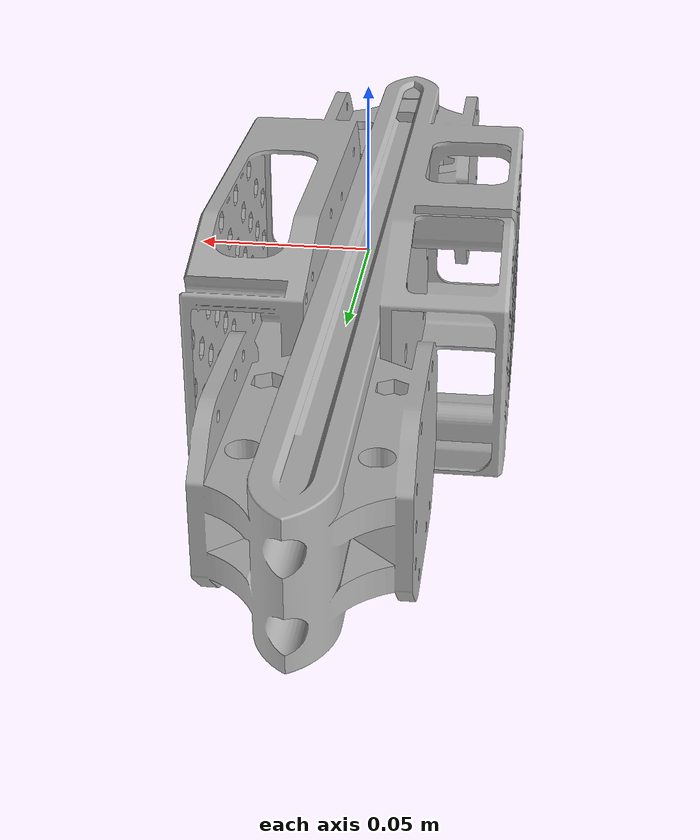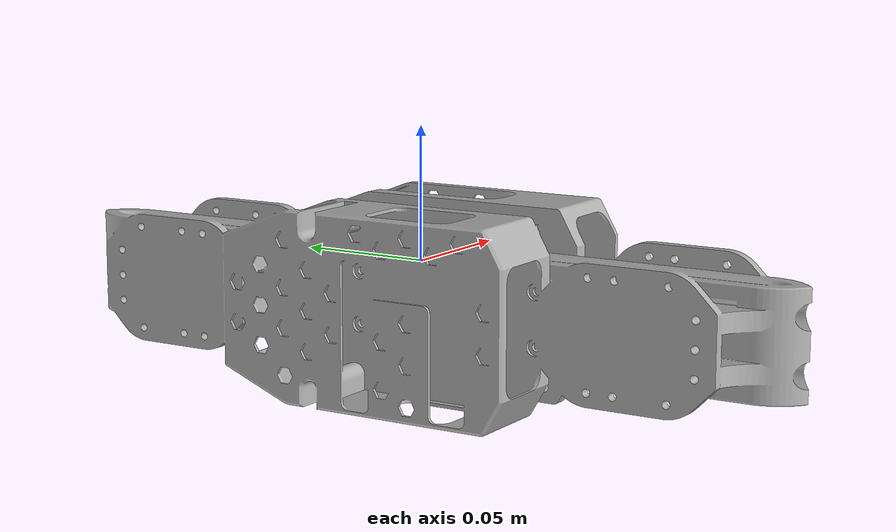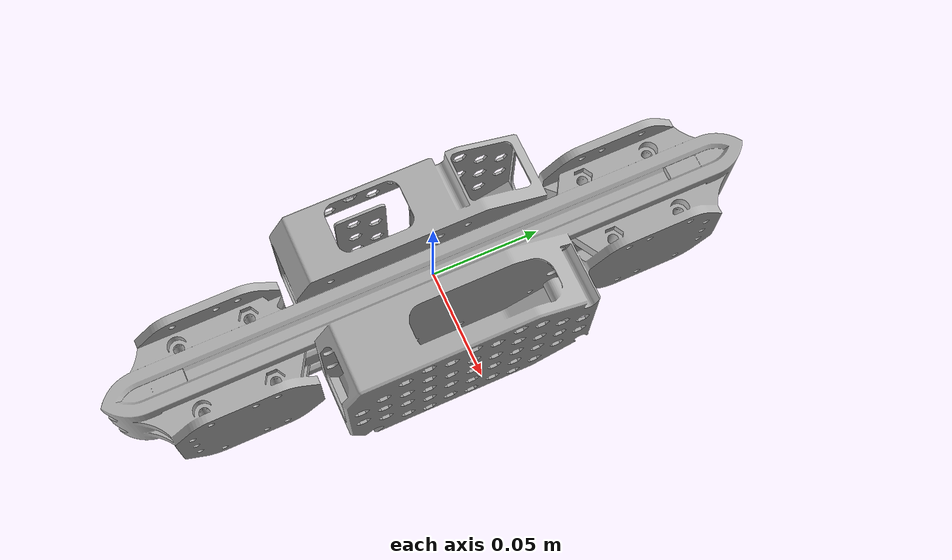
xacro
<?xml version="1.0" ?>
<robot name="sence_main" xmlns:xacro="http://www.ros.org/wiki/xacro">

<xacro:include filename="$(find sence_main_description)/urdf/materials.xacro" />
<xacro:include filename="$(find sence_main_description)/urdf/sence_main.trans" />
<xacro:include filename="$(find sence_main_description)/urdf/sence_main.gazebo" />

<link name="base_link">
</link>

<link name="core">
<inertial>
    <origin xyz="0.00021651891376084524 -0.00010528739970071409 -0.014193022646418384" rpy="0 0 0"/>
    <mass value="0.4767252028506373"/>
    <inertia ixx="0.003452" iyy="0.000207" izz="0.003461" ixy="3e-06" iyz="2e-06" ixz="2e-06"/>
  </inertial>
  <visual>
    <origin xyz="0 0 0" rpy="0 0 0"/>
    <geometry>
      <mesh filename="package://sence_main_description/meshes/base_link.stl" scale="0.001 0.001 0.001"/>
    </geometry>
    <material name="silver"/>
  </visual>
  <collision>
    <origin xyz="0 0 0" rpy="0 0 0"/>
    <geometry>
      <mesh filename="package://sence_main_description/meshes/base_link.stl" scale="0.001 0.001 0.001"/>
    </geometry>
  </collision>
</link>

<joint name="con" type="fixed">
  <origin rpy="0 0 0" xyz="0 0 0"/>
  <parent link="base_link"/>
  <child link="core"/>
</joint>

</robot>

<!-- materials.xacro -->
<robot name="sence_main" xmlns:xacro="http://www.ros.org/wiki/xacro" >

<material name="silver">
  <color rgba="0.700 0.700 0.700 1.000"/>
</material>

</robot>

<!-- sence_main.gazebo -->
<robot name="sence_main" xmlns:xacro="http://www.ros.org/wiki/xacro" >

<xacro:property name="body_color" value="Gazebo/Silver" />

<gazebo>
  <plugin name="control" filename="libgazebo_ros_control.so"/>
</gazebo>
<gazebo reference="base_link">
  <material>${body_color}</material>
  <mu1>0.2</mu1>
  <mu2>0.2</mu2>
  <selfCollide>true</selfCollide>
  <gravity>true</gravity>
</gazebo>

</robot>
